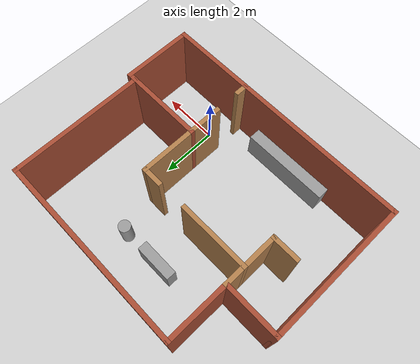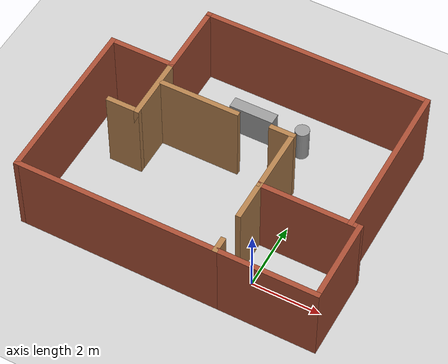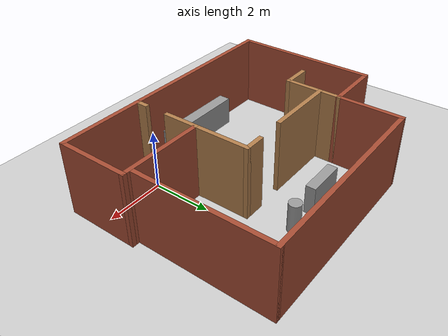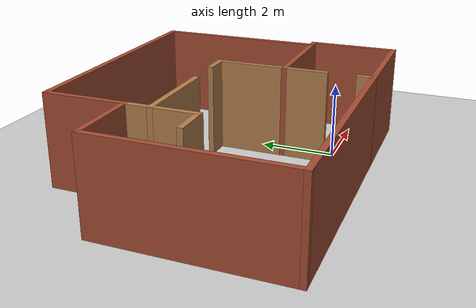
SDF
<sdf version="1.6">
 <world name="default">
  <light name="sun" type="directional">
   <pose>0 0 10 0 -0 0</pose>
   <diffuse>0.8 0.8 0.8 1</diffuse>
   <specular>0.2 0.2 0.2 1</specular>
   <attenuation>
    <range>1000</range>
    <constant>0.9</constant>
    <linear>0.01</linear>
    <quadratic>0.001</quadratic>
   </attenuation>
   <direction>-0.5 0.1 -0.9</direction>
  </light>
  <model name="ground_plane">
   <static>1</static>
   <link name="link">
    <collision name="collision">
     <geometry><plane><normal>0 0 1</normal><size>100 100</size></plane></geometry>
     <surface>
      <contact><collide_bitmask>65535</collide_bitmask></contact>
      <friction><ode><mu>100</mu><mu2>50</mu2></ode></friction>
     </surface>
    </collision>
    <visual name="visual">
     <cast_shadows>0</cast_shadows>
     <geometry><plane><normal>0 0 1</normal><size>100 100</size></plane></geometry>
     <material>
      <script><uri>file://media/materials/scripts/gazebo.material</uri><name>Gazebo/Grey</name></script>
     </material>
    </visual>
   </link>
  </model>
  <gravity>0 0 -9.8</gravity>
  <magnetic_field>6e-06 2.3e-05 -4.2e-05</magnetic_field>
  <atmosphere type="adiabatic"/>
  <physics name="default_physics" default="0" type="ode">
   <max_step_size>0.001</max_step_size>
   <real_time_factor>1</real_time_factor>
   <real_time_update_rate>1000</real_time_update_rate>
  </physics>
  <scene><ambient>0.4 0.4 0.4 1</ambient><background>0.7 0.7 0.7 1</background><shadows>1</shadows></scene>
  <audio><device>default</device></audio>
  <spherical_coordinates>
   <surface_model>EARTH_WGS84</surface_model>
   <latitude_deg>0</latitude_deg>
   <longitude_deg>0</longitude_deg>
   <elevation>0</elevation>
   <heading_deg>0</heading_deg>
  </spherical_coordinates>
  <model name="Room3">
   <pose>-1.98232 2.40688 0 0 -0 0</pose>
   <link name="Wall_0">
    <collision name="Wall_0_Collision">
     <geometry><box><size>2.5 0.15 2.5</size></box></geometry>
     <pose>0 0 1.25 0 -0 0</pose>
    </collision>
    <visual name="Wall_0_Visual">
     <pose>0 0 1.25 0 -0 0</pose>
     <geometry><box><size>2.5 0.15 2.5</size></box></geometry>
     <material>
      <script><uri>file://media/materials/scripts/gazebo.material</uri><name>Gazebo/Bricks</name></script>
      <ambient>1 1 1 1</ambient>
     </material>
     <meta><layer>0</layer></meta>
    </visual>
    <pose>4.35 -2.3 0 0 -0 1.5708</pose>
   </link>
   <link name="Wall_1">
    <collision name="Wall_1_Collision">
     <geometry><box><size>3 0.15 2.5</size></box></geometry>
     <pose>0 0 1.25 0 -0 0</pose>
    </collision>
    <visual name="Wall_1_Visual">
     <pose>0 0 1.25 0 -0 0</pose>
     <geometry><box><size>3 0.15 2.5</size></box></geometry>
     <material>
      <script><uri>file://media/materials/scripts/gazebo.material</uri><name>Gazebo/Bricks</name></script>
      <ambient>1 1 1 1</ambient>
     </material>
     <meta><layer>0</layer></meta>
    </visual>
    <pose>2.925 -1.125 0 0 -0 3.14159</pose>
   </link>
   <link name="Wall_10">
    <collision name="Wall_10_Collision">
     <geometry><box><size>5 0.15 2.5</size></box></geometry>
     <pose>0 0 1.25 0 -0 0</pose>
    </collision>
    <visual name="Wall_10_Visual">
     <pose>0 0 1.25 0 -0 0</pose>
     <geometry><box><size>5 0.15 2.5</size></box></geometry>
     <material>
      <script><uri>file://media/materials/scripts/gazebo.material</uri><name>Gazebo/Bricks</name></script>
      <ambient>1 1 1 1</ambient>
     </material>
     <meta><layer>0</layer></meta>
    </visual>
    <pose>-4.35 -1.05 0 0 -0 1.5708</pose>
   </link>
   <link name="Wall_11">
    <collision name="Wall_11_Collision">
     <geometry><box><size>2 0.15 2.5</size></box></geometry>
     <pose>0 0 1.25 0 -0 0</pose>
    </collision>
    <visual name="Wall_11_Visual">
     <pose>0 0 1.25 0 -0 0</pose>
     <geometry><box><size>2 0.15 2.5</size></box></geometry>
     <material>
      <script><uri>file://media/materials/scripts/gazebo.material</uri><name>Gazebo/Bricks</name></script>
      <ambient>1 1 1 1</ambient>
     </material>
     <meta><layer>0</layer></meta>
    </visual>
    <pose>-3.425 1.375 0 0 -0 0</pose>
   </link>
   <link name="Wall_12">
    <collision name="Wall_12_Collision">
     <geometry><box><size>2 0.15 2.5</size></box></geometry>
     <pose>0 0 1.25 0 -0 0</pose>
    </collision>
    <visual name="Wall_12_Visual">
     <pose>0 0 1.25 0 -0 0</pose>
     <geometry><box><size>2 0.15 2.5</size></box></geometry>
     <material>
      <script><uri>file://media/materials/scripts/gazebo.material</uri><name>Gazebo/Wood</name></script>
      <ambient>1 1 1 1</ambient>
     </material>
     <meta><layer>0</layer></meta>
    </visual>
    <pose>-2.5 0.45 0 0 -0 -1.5708</pose>
   </link>
   <link name="Wall_13">
    <collision name="Wall_13_Collision">
     <geometry><box><size>1 0.15 2.5</size></box></geometry>
     <pose>0 0 1.25 0 -0 0</pose>
    </collision>
    <visual name="Wall_13_Visual">
     <pose>0 0 1.25 0 -0 0</pose>
     <geometry><box><size>1 0.15 2.5</size></box></geometry>
     <material>
      <script><uri>file://media/materials/scripts/gazebo.material</uri><name>Gazebo/Wood</name></script>
      <ambient>1 1 1 1</ambient>
     </material>
     <meta><layer>0</layer></meta>
    </visual>
    <pose>-2.925 -0.475 0 0 -0 3.14159</pose>
   </link>
   <link name="Wall_15">
    <collision name="Wall_15_Collision">
     <geometry><box><size>2.5 0.15 2.5</size></box></geometry>
     <pose>0 0 1.25 0 -0 0</pose>
    </collision>
    <visual name="Wall_15_Visual">
     <pose>0 0 1.25 0 -0 0</pose>
     <geometry><box><size>2.5 0.15 2.5</size></box></geometry>
     <material>
      <script><uri>file://media/materials/scripts/gazebo.material</uri><name>Gazebo/Wood</name></script>
      <ambient>1 1 1 1</ambient>
     </material>
     <meta><layer>0</layer></meta>
    </visual>
    <pose>-1.325 0.695 0 0 -0 0</pose>
   </link>
   <link name="Wall_20">
    <collision name="Wall_20_Collision">
     <geometry><box><size>2 0.15 2.5</size></box></geometry>
     <pose>0 0 1.25 0 -0 0</pose>
    </collision>
    <visual name="Wall_20_Visual">
     <pose>0 0 1.25 0 -0 0</pose>
     <geometry><box><size>2 0.15 2.5</size></box></geometry>
     <material>
      <script><uri>file://media/materials/scripts/gazebo.material</uri><name>Gazebo/Wood</name></script>
      <ambient>1 1 1 1</ambient>
     </material>
     <meta><layer>0</layer></meta>
    </visual>
    <pose>1.5 -0.2 0 0 -0 1.5708</pose>
   </link>
   <link name="Wall_21">
    <collision name="Wall_21_Collision">
     <geometry><box><size>0.75 0.15 2.5</size></box></geometry>
     <pose>0 0 1.25 0 -0 0</pose>
    </collision>
    <visual name="Wall_21_Visual">
     <pose>0 0 1.25 0 -0 0</pose>
     <geometry><box><size>0.75 0.15 2.5</size></box></geometry>
     <material>
      <script><uri>file://media/materials/scripts/gazebo.material</uri><name>Gazebo/Wood</name></script>
      <ambient>1 1 1 1</ambient>
     </material>
     <meta><layer>0</layer></meta>
    </visual>
    <pose>1.2 0.725 0 0 -0 3.14159</pose>
   </link>
   <link name="Wall_23">
    <collision name="Wall_23_Collision">
     <geometry><box><size>2.25 0.15 2.5</size></box></geometry>
     <pose>0 0 1.25 0 -0 0</pose>
    </collision>
    <visual name="Wall_23_Visual">
     <pose>0 0 1.25 0 -0 0</pose>
     <geometry><box><size>2.25 0.15 2.5</size></box></geometry>
     <material>
      <script><uri>file://media/materials/scripts/gazebo.material</uri><name>Gazebo/Bricks</name></script>
      <ambient>1 1 1 1</ambient>
     </material>
     <meta><layer>0</layer></meta>
    </visual>
    <pose>-2.5 2.425 0 0 -0 1.5708</pose>
   </link>
   <link name="Wall_24">
    <collision name="Wall_24_Collision">
     <geometry><box><size>6.75 0.15 2.5</size></box></geometry>
     <pose>0 0 1.25 0 -0 0</pose>
    </collision>
    <visual name="Wall_24_Visual">
     <pose>0 0 1.25 0 -0 0</pose>
     <geometry><box><size>6.75 0.15 2.5</size></box></geometry>
     <material>
      <script><uri>file://media/materials/scripts/gazebo.material</uri><name>Gazebo/Bricks</name></script>
      <ambient>1 1 1 1</ambient>
     </material>
     <meta><layer>0</layer></meta>
    </visual>
    <pose>0.8 3.475 0 0 -0 0</pose>
   </link>
   <link name="Wall_25">
    <collision name="Wall_25_Collision">
     <geometry><box><size>4.75 0.15 2.5</size></box></geometry>
     <pose>0 0 1.25 0 -0 0</pose>
    </collision>
    <visual name="Wall_25_Visual">
     <pose>0 0 1.25 0 -0 0</pose>
     <geometry><box><size>4.75 0.15 2.5</size></box></geometry>
     <material>
      <script><uri>file://media/materials/scripts/gazebo.material</uri><name>Gazebo/Bricks</name></script>
      <ambient>1 1 1 1</ambient>
     </material>
     <meta><layer>0</layer></meta>
    </visual>
    <pose>4.1 1.175 0 0 -0 -1.5708</pose>
   </link>
   <link name="Wall_4">
    <collision name="Wall_4_Collision">
     <geometry><box><size>3 0.15 2.5</size></box></geometry>
     <pose>0 0 1.25 0 -0 0</pose>
    </collision>
    <visual name="Wall_4_Visual">
     <pose>0 0 1.25 0 -0 0</pose>
     <geometry><box><size>3 0.15 2.5</size></box></geometry>
     <material>
      <script><uri>file://media/materials/scripts/gazebo.material</uri><name>Gazebo/Bricks</name></script>
      <ambient>1 1 1 1</ambient>
     </material>
     <meta><layer>0</layer></meta>
    </visual>
    <pose>2.925 -3.475 0 0 -0 3.14159</pose>
   </link>
   <link name="Wall_5">
    <collision name="Wall_5_Collision">
     <geometry><box><size>0.5 0.15 2.5</size></box></geometry>
     <pose>0 0 1.25 0 -0 0</pose>
    </collision>
    <visual name="Wall_5_Visual">
     <pose>0 0 1.25 0 -0 0</pose>
     <geometry><box><size>0.5 0.15 2.5</size></box></geometry>
     <material>
      <script><uri>file://media/materials/scripts/gazebo.material</uri><name>Gazebo/Wood</name></script>
      <ambient>1 1 1 1</ambient>
     </material>
     <meta><layer>0</layer></meta>
    </visual>
    <pose>1.5 -3.3 0 0 -0 1.5708</pose>
   </link>
   <link name="Wall_7">
    <collision name="Wall_7_Collision">
     <geometry><box><size>1.25 0.15 2.5</size></box></geometry>
     <pose>0 0 1.25 0 -0 0</pose>
    </collision>
    <visual name="Wall_7_Visual">
     <pose>0 0 1.25 0 -0 0</pose>
     <geometry><box><size>1.25 0.15 2.5</size></box></geometry>
     <material>
      <script><uri>file://media/materials/scripts/gazebo.material</uri><name>Gazebo/Wood</name></script>
      <ambient>1 1 1 1</ambient>
     </material>
     <meta><layer>0</layer></meta>
    </visual>
    <pose>1.5 -1.675 0 0 -0 -1.5708</pose>
   </link>
   <link name="Wall_9">
    <collision name="Wall_9_Collision">
     <geometry><box><size>6 0.15 2.5</size></box></geometry>
     <pose>0 0 1.25 0 -0 0</pose>
    </collision>
    <visual name="Wall_9_Visual">
     <pose>0 0 1.25 0 -0 0</pose>
     <geometry><box><size>6 0.15 2.5</size></box></geometry>
     <material>
      <script><uri>file://media/materials/scripts/gazebo.material</uri><name>Gazebo/Bricks</name></script>
      <ambient>1 1 1 1</ambient>
     </material>
     <meta><layer>0</layer></meta>
    </visual>
    <pose>-1.425 -3.475 0 0 -0 3.14159</pose>
   </link>
   <static>1</static>
  </model>
  <model name="unit_cylinder_clone_clone_clone">
   <pose>-0.857762 4.53259 0.499992 0 -0 5e-06</pose>
   <link name="link">
    <inertial>
     <mass>1</mass>
     <inertia><ixx>0.145833</ixx><ixy>0</ixy><ixz>0</ixz><iyy>0.145833</iyy><iyz>0</iyz><izz>0.125</izz></inertia>
    </inertial>
    <collision name="collision">
     <geometry><cylinder><radius>0.209772</radius><length>1</length></cylinder></geometry>
    </collision>
    <visual name="visual">
     <geometry><cylinder><radius>0.209772</radius><length>1</length></cylinder></geometry>
     <material>
      <script><name>Gazebo/Grey</name><uri>file://media/materials/scripts/gazebo.material</uri></script>
     </material>
    </visual>
   </link>
  </model>
  <model name="unit_box">
   <pose>-2.90379 -0.759113 0.499811 -1e-06 -0.000124 0.000313</pose>
   <link name="link">
    <inertial>
     <mass>1</mass>
     <inertia>
      <ixx>0.166667</ixx>
      <ixy>0</ixy>
      <ixz>0</ixz>
      <iyy>0.166667</iyy>
      <iyz>0</iyz>
      <izz>0.166667</izz>
     </inertia>
    </inertial>
    <collision name="collision"><geometry><box><size>3.04375 0.410379 1</size></box></geometry></collision>
    <visual name="visual">
     <geometry><box><size>3.04375 0.410379 1</size></box></geometry>
     <material>
      <script><name>Gazebo/Grey</name><uri>file://media/materials/scripts/gazebo.material</uri></script>
     </material>
    </visual>
   </link>
  </model>
  <model name="unit_box_0">
   <pose>-2.35506 4.52782 0.499996 -6e-06 -1e-06 -1.56903</pose>
   <link name="link">
    <inertial>
     <mass>1</mass>
     <inertia>
      <ixx>0.166667</ixx>
      <ixy>0</ixy>
      <ixz>0</ixz>
      <iyy>0.166667</iyy>
      <iyz>0</iyz>
      <izz>0.166667</izz>
     </inertia>
    </inertial>
    <collision name="collision"><geometry><box><size>0.342837 1.32343 1</size></box></geometry></collision>
    <visual name="visual">
     <geometry><box><size>0.342837 1.32343 1</size></box></geometry>
     <material>
      <script><name>Gazebo/Grey</name><uri>file://media/materials/scripts/gazebo.material</uri></script>
     </material>
    </visual>
   </link>
  </model>
 </world>
</sdf>
